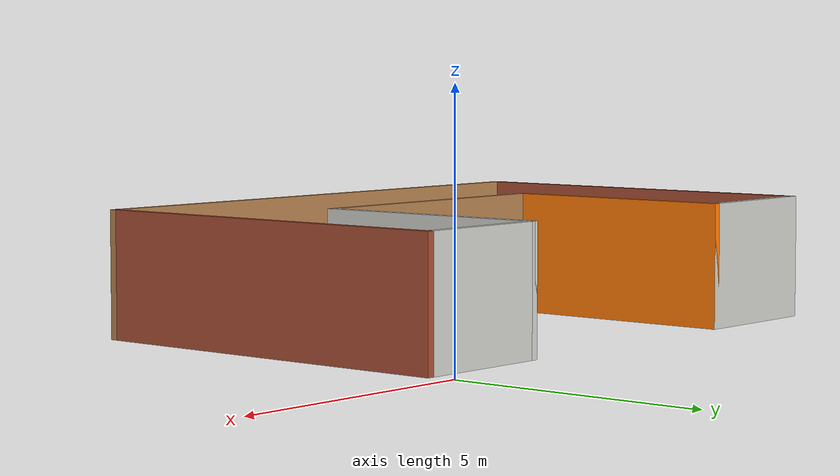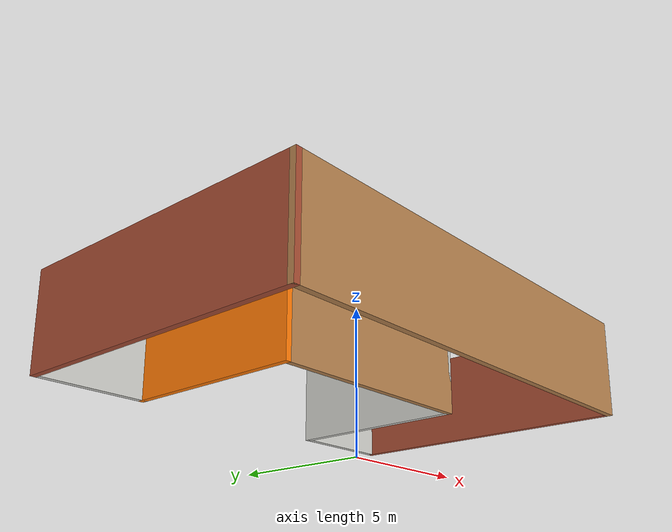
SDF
<?xml version='1.0'?>
<sdf version='1.6'>
  <model name='my_world'>
    <pose frame=''>-5.723 -4.495 0 0 -0 0</pose>
    <link name='Wall_10'>
      <collision name='Wall_10_Collision'>
        <geometry>
          <box>
            <size>8 0.15 2.5</size>
          </box>
        </geometry>
        <pose frame=''>0 0 1.25 0 -0 0</pose>
      </collision>
      <visual name='Wall_10_Visual'>
        <pose frame=''>0 0 1.25 0 -0 0</pose>
        <geometry>
          <box>
            <size>8 0.15 2.5</size>
          </box>
        </geometry>
        <material>
          <script>
            <uri>file://media/materials/scripts/gazebo.material</uri>
            <name>Gazebo/Bricks</name>
          </script>
          <ambient>0.760784 0.662745 0.627451 1</ambient>
        </material>
      </visual>
      <pose frame=''>-5.775 0 0 0 -0 1.5708</pose>
    </link>
    <link name='Wall_11'>
      <collision name='Wall_11_Collision'>
        <geometry>
          <box>
            <size>3 0.15 2.5</size>
          </box>
        </geometry>
        <pose frame=''>0 0 1.25 0 -0 0</pose>
      </collision>
      <visual name='Wall_11_Visual'>
        <pose frame=''>0 0 1.25 0 -0 0</pose>
        <geometry>
          <box>
            <size>3 0.15 2.5</size>
          </box>
        </geometry>
        <material>
          <script>
            <uri>file://media/materials/scripts/gazebo.material</uri>
            <name>Gazebo/CeilingTiled</name>
          </script>
          <ambient>0.921569 0.807843 0.615686 1</ambient>
        </material>
      </visual>
      <pose frame=''>-4.35 3.925 0 0 -0 0</pose>
    </link>
    <link name='Wall_12'>
      <collision name='Wall_12_Collision'>
        <geometry>
          <box>
            <size>5 0.15 2.5</size>
          </box>
        </geometry>
        <pose frame=''>0 0 1.25 0 -0 0</pose>
      </collision>
      <visual name='Wall_12_Visual'>
        <pose frame=''>0 0 1.25 0 -0 0</pose>
        <geometry>
          <box>
            <size>5 0.15 2.5</size>
          </box>
        </geometry>
        <material>
          <script>
            <uri>file://media/materials/scripts/gazebo.material</uri>
            <name>Gazebo/Grey</name>
          </script>
          <ambient>0.996078 0.47451 0.0196078 1</ambient>
        </material>
      </visual>
      <pose frame=''>-2.925 1.5 0 0 0 -1.5708</pose>
    </link>
    <link name='Wall_13'>
      <collision name='Wall_13_Collision'>
        <geometry>
          <box>
            <size>6 0.15 2.5</size>
          </box>
        </geometry>
        <pose frame=''>0 0 1.25 0 -0 0</pose>
      </collision>
      <visual name='Wall_13_Visual'>
        <pose frame=''>0 0 1.25 0 -0 0</pose>
        <geometry>
          <box>
            <size>6 0.15 2.5</size>
          </box>
        </geometry>
        <material>
          <script>
            <uri>file://media/materials/scripts/gazebo.material</uri>
            <name>Gazebo/Wood</name>
          </script>
          <ambient>1 1 1 1</ambient>
        </material>
      </visual>
      <pose frame=''>0 -0.925 0 0 -0 0</pose>
    </link>
    <link name='Wall_14'>
      <collision name='Wall_14_Collision'>
        <geometry>
          <box>
            <size>5 0.15 2.5</size>
          </box>
        </geometry>
        <pose frame=''>0 0 1.25 0 -0 0</pose>
      </collision>
      <visual name='Wall_14_Visual'>
        <pose frame=''>0 0 1.25 0 -0 0</pose>
        <geometry>
          <box>
            <size>5 0.15 2.5</size>
          </box>
        </geometry>
        <material>
          <script>
            <uri>file://media/materials/scripts/gazebo.material</uri>
            <name>Gazebo/CeilingTiled</name>
          </script>
          <ambient>0.996078 0.47451 0.0196078 1</ambient>
        </material>
      </visual>
      <pose frame=''>2.925 1.5 0 0 -0 1.5708</pose>
    </link>
    <link name='Wall_15'>
      <collision name='Wall_15_Collision'>
        <geometry>
          <box>
            <size>3 0.15 2.5</size>
          </box>
        </geometry>
        <pose frame=''>0 0 1.25 0 -0 0</pose>
      </collision>
      <visual name='Wall_15_Visual'>
        <pose frame=''>0 0 1.25 0 -0 0</pose>
        <geometry>
          <box>
            <size>3 0.15 2.5</size>
          </box>
        </geometry>
        <material>
          <script>
            <uri>file://media/materials/scripts/gazebo.material</uri>
            <name>Gazebo/CeilingTiled</name>
          </script>
          <ambient>0.921569 0.807843 0.615686 1</ambient>
        </material>
      </visual>
      <pose frame=''>4.35 3.925 0 0 -0 0</pose>
    </link>
    <link name='Wall_16'>
      <collision name='Wall_16_Collision'>
        <geometry>
          <box>
            <size>8 0.15 2.5</size>
          </box>
        </geometry>
        <pose frame=''>0 0 1.25 0 -0 0</pose>
      </collision>
      <visual name='Wall_16_Visual'>
        <pose frame=''>0 0 1.25 0 -0 0</pose>
        <geometry>
          <box>
            <size>8 0.15 2.5</size>
          </box>
        </geometry>
        <material>
          <script>
            <uri>file://media/materials/scripts/gazebo.material</uri>
            <name>Gazebo/Bricks</name>
          </script>
          <ambient>1 1 1 1</ambient>
        </material>
      </visual>
      <pose frame=''>5.775 0 0 0 0 -1.5708</pose>
    </link>
    <link name='Wall_17'>
      <collision name='Wall_17_Collision'>
        <geometry>
          <box>
            <size>11.7 0.15 2.5</size>
          </box>
        </geometry>
        <pose frame=''>0 0 1.25 0 -0 0</pose>
      </collision>
      <visual name='Wall_17_Visual'>
        <pose frame=''>0 0 1.25 0 -0 0</pose>
        <geometry>
          <box>
            <size>11.7 0.15 2.5</size>
          </box>
        </geometry>
        <material>
          <script>
            <uri>file://media/materials/scripts/gazebo.material</uri>
            <name>Gazebo/Wood</name>
          </script>
          <ambient>1 1 1 1</ambient>
        </material>
      </visual>
      <pose frame=''>0 -3.925 0 0 -0 3.14159</pose>
    </link>
    <static>1</static>
  </model>
</sdf>
